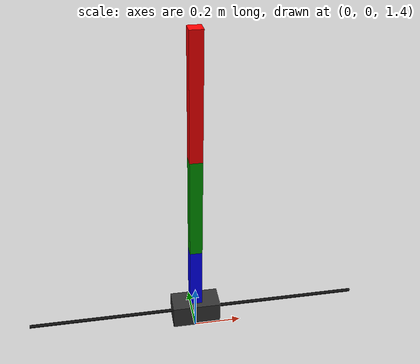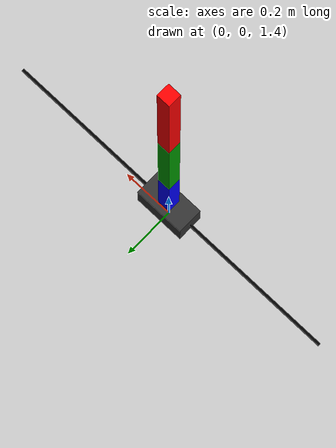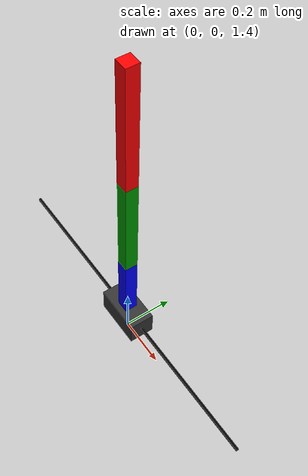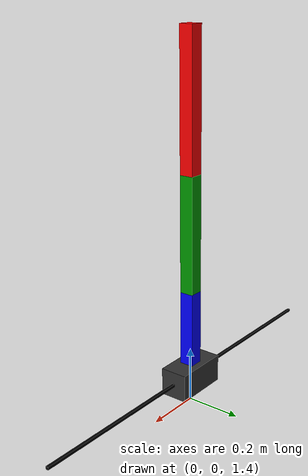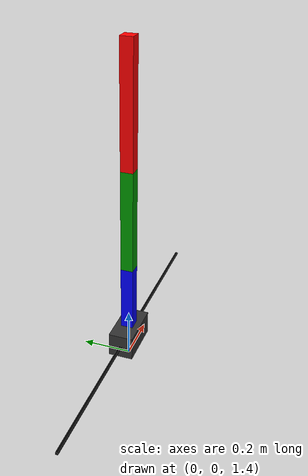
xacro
<?xml version="1.0" encoding="UTF-8"?>
<robot xmlns:xacro="http://wiki.ros.org/xacro" name="triple_pendulum">
  <!-- Hardware selection swtich                -->
  <xacro:arg name="use_mock" default="false" />
  <xacro:arg name="use_gazebo" default="false" />
  <xacro:arg name="use_unity" default="false" />
  <xacro:arg name="controller_configs_for_gazebo" default="" />

  <!-- Reference coordinate system              -->
  <link name="world" />

  <!-- robot model                              -->
  <xacro:include filename="triple_pendulum.xacro" />
  <xacro:triple_pendulum
    parent="world">
    <origin xyz="0.0 0.0 1.5" rpy="0.0 0.0 0.0" />
  </xacro:triple_pendulum>

  <!-- ros2_control                             -->
  <xacro:include filename="triple_pendulum_control.xacro" />
  <xacro:triple_pendulum_control
    use_mock="$(arg use_mock)"
    use_gazebo="$(arg use_gazebo)"
    use_unity="$(arg use_unity)" />

  <!-- for Gazebo -->
  <xacro:if value="$(arg use_gazebo)">
    <gazebo reference="world" />

    <!-- ros2_control plugin for Gazebo -->
    <gazebo>
      <plugin filename="libgazebo_ros2_control.so" name="gazebo_ros2_control">
        <parameters>$(arg controller_configs_for_gazebo)</parameters>
      </plugin>
    </gazebo>
  </xacro:if>
</robot>

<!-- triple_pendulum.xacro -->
<robot xmlns:xacro="http://wiki.ros.org/xacro">
  <!-- Definitions of robot                     -->
  <!--
    parent:         name of parent coodination
    parent_origin:  origin of parent coordination
  -->
  <xacro:macro name="triple_pendulum"
    params="parent *parent_origin">
    <!-- Include macros                           -->
    <xacro:include filename="material.xacro" />

    <!-- Linkages                                 -->
    <!-- base_link -->
    <link name="base_link">
      <visual>
        <origin xyz="0.0 0.0 0.0" rpy="0.0 0.0 0.0" />
        <geometry>
          <box size="1.4 0.01 0.01" />
        </geometry>
        <material name="black" />
      </visual>
      <!-- dummy -->
      <inertial>
        <origin xyz="0.0 0.0 0.0" rpy="0.0 0.0 0.0" />
        <mass value="1.0" />
        <inertia
          ixx="0.01"
          iyy="0.01"
          izz="0.01"
          ixy="0.0"
          iyz="0.0"
          ixz="0.0" />
      </inertial>
    </link>

    <!-- cart -->
    <link name="cart">
      <visual>
        <origin xyz="0.0 0.0 0.0" rpy="0.0 0.0 0.0" />
        <geometry>
          <box size="0.2 0.1 0.1" />
        </geometry>
        <material name="gray" />
      </visual>
      <inertial>
        <origin xyz="0.0 0.0 0.0" rpy="0.0 0.0 0.0" />
        <mass value="1.0" />
        <inertia
          ixx="0.01"
          iyy="0.01"
          izz="0.01"
          ixy="0.0"
          iyz="0.0"
          ixz="0.0" />
      </inertial>
    </link>

    <!-- pendulum 1 -->
    <link name="pendulum1">
      <visual>
        <origin xyz="0.0 0.0 ${0.323/2}" rpy="0.0 0.0 0.0" />
        <geometry>
          <box size="0.05 0.05 0.323" />
        </geometry>
        <material name="blue" />
      </visual>
      <inertial>
        <origin xyz="0.0 0.0 0.215" rpy="0.0 0.0 0.0" />
        <mass value="0.876" />
        <inertia
          ixx="0.013"
          iyy="0.013"
          izz="0.001"
          ixy="0.0"
          iyz="0.0"
          ixz="0.0" />
      </inertial>
    </link>

    <!-- pendulum 2 -->
    <link name="pendulum2">
      <visual>
        <origin xyz="0.0 0.0 ${0.419/2}" rpy="0.0 0.0 0.0" />
        <geometry>
          <box size="0.05 0.05 0.419" />
        </geometry>
        <material name="green" />
      </visual>
      <inertial>
        <origin xyz="0.0 0.0 0.269" rpy="0.0 0.0 0.0" />
        <mass value="0.938" />
        <inertia
          ixx="0.024"
          iyy="0.024"
          izz="0.001"
          ixy="0.0"
          iyz="0.0"
          ixz="0.0" />
      </inertial>
    </link>

    <!-- pendulum 3 -->
    <link name="pendulum3">
      <visual>
        <origin xyz="0.0 0.0 ${0.484/2}" rpy="0.0 0.0 0.0" />
        <geometry>
          <box size="0.05 0.05 0.484" />
        </geometry>
        <material name="red" />
      </visual>
      <inertial>
        <origin xyz="0.0 0.0 0.226" rpy="0.0 0.0 0.0" />
        <mass value="0.553" />
        <inertia
          ixx="0.018"
          iyy="0.018"
          izz="0.001"
          ixy="0.0"
          iyz="0.0"
          ixz="0.0" />
      </inertial>
    </link>

    <!-- Joints                                   -->
    <!-- base_joint (parent -> base_link) -->
    <joint name="base_joint" type="fixed">
      <parent link="${parent}" />
      <child link="base_link" />
      <xacro:insert_block name="parent_origin" />
    </joint>

    <!-- slider (base_link -> cart) -->
    <joint name="slider" type="prismatic">
      <parent link="base_link" />
      <child link="cart" />
      <origin xyz="0.0 0.0 0.0" rpy="0.0 0.0 0.0" />
      <axis xyz="1.0 0.0 0.0" />
      <limit
        lower="-0.7"
        upper="0.7"
        velocity="3.0"
        effort="22.0" />
    </joint>

    <!-- joint1 (cart -> pendulum1) -->
    <joint name="joint1" type="continuous">
      <parent link="cart" />
      <child link="pendulum1" />
      <origin xyz="0.0 0.0 0.0" rpy="0.0 0.0 0.0" />
      <axis xyz="0.0 1.0 0.0" />
      <dynamics damping="0.215" friction="0.0" />
    </joint>

    <!-- joint2 (pendulum1 -> pendulum2) -->
    <joint name="joint2" type="continuous">
      <parent link="pendulum1" />
      <child link="pendulum2" />
      <origin xyz="0.0 0.0 0.323" rpy="0.0 0.0 0.0" />
      <axis xyz="0.0 1.0 0.0" />
      <dynamics damping="0.002" friction="0.0" />
    </joint>

    <!-- joint3 (pendulum2 -> pendulum3) -->
    <joint name="joint3" type="continuous">
      <parent link="pendulum2" />
      <child link="pendulum3" />
      <origin xyz="0.0 0.0 0.419" rpy="0.0 0.0 0.0" />
      <axis xyz="0.0 1.0 0.0" />
      <dynamics damping="0.002" friction="0.0" />
    </joint>
  </xacro:macro>
</robot>

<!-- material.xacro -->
<robot xmlns:xacro="http://wiki.ros.org/xacro">
  <!-- Definitions of materials                 -->
  <material name="black">
    <color rgba="0.0 0.0 0.0 1.0" />
  </material>

  <material name="white">
    <color rgba="1.0 1.0 1.0 1.0" />
  </material>

  <material name="gray">
    <color rgba="0.2 0.2 0.2 1.0" />
  </material>

  <material name="blue">
    <color rgba="0.0 0.0 1.0 1.0" />
  </material>

  <material name="green">
    <color rgba="0.0 0.6 0.0 1.0" />
  </material>

  <material name="red">
    <color rgba="1.0 0.0 0.0 1.0" />
  </material>
</robot>
